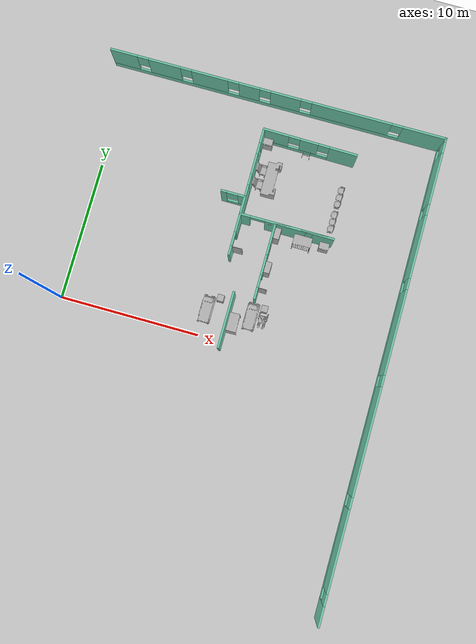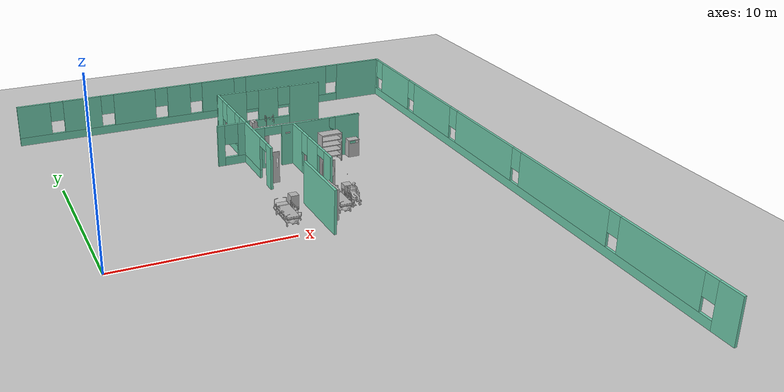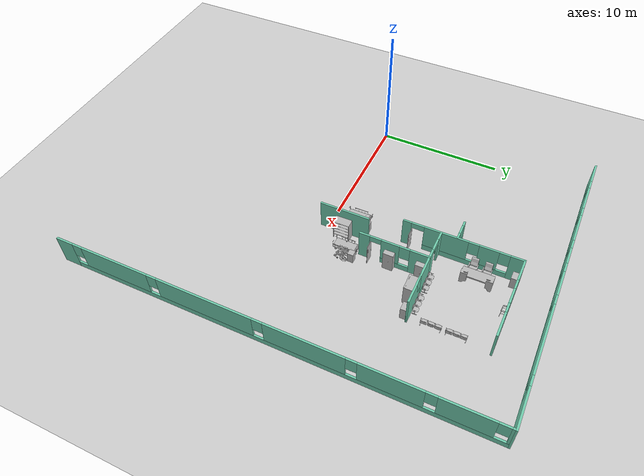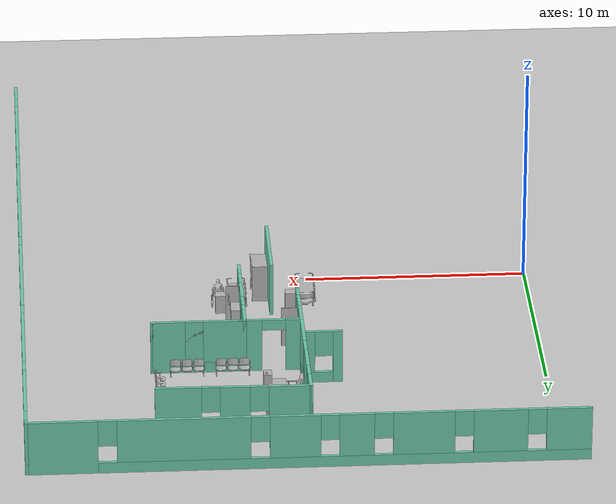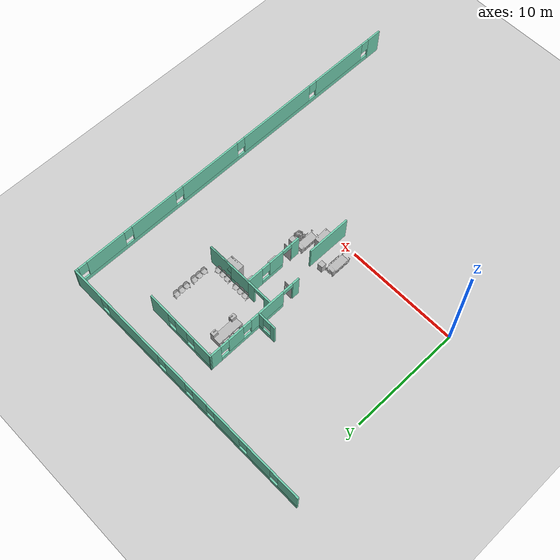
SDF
<sdf version="1.6">
 <world name="default">
  <model name="ground_plane">
   <static>1</static>
   <link name="link">
    <collision name="collision">
     <geometry><plane><normal>0 0 1</normal><size>100 100</size></plane></geometry>
     <surface><friction><ode><mu>100</mu><mu2>50</mu2></ode></friction></surface>
    </collision>
    <visual name="visual">
     <cast_shadows>0</cast_shadows>
     <geometry><plane><normal>0 0 1</normal><size>100 100</size></plane></geometry>
     <material>
      <script><uri>file://media/materials/scripts/gazebo.material</uri><name>Gazebo/Grey</name></script>
     </material>
    </visual>
   </link>
  </model>
  <model name="Hospital_empty">
   <pose>0.7078 0.61575 0 0 -0 0</pose>
   <link name="Wall_2">
    <pose>22.303 -0.012012 0 0 -0 1.5708</pose>
    <visual name="Wall_2_Visual_0">
     <pose>-16.2974 0 1.25 0 -0 0</pose>
     <geometry><box><size>1.40521 0.15 2.5</size></box></geometry>
     <material>
      <script><uri>file://media/materials/scripts/gazebo.material</uri><name>Gazebo/Grey</name></script>
      <ambient>0.435294 0.796078 0.67451 1</ambient>
     </material>
    </visual>
    <collision name="Wall_2_Collision_0">
     <geometry><box><size>1.40521 0.15 2.5</size></box></geometry>
     <pose>-16.2974 0 1.25 0 -0 0</pose>
    </collision>
    <visual name="Wall_2_Visual_1">
     <pose>0.702607 0 0.25 0 -0 0</pose>
     <geometry><box><size>32.5948 0.15 0.5</size></box></geometry>
     <material>
      <script><uri>file://media/materials/scripts/gazebo.material</uri><name>Gazebo/Grey</name></script>
      <ambient>0.435294 0.796078 0.67451 1</ambient>
     </material>
    </visual>
    <collision name="Wall_2_Collision_1">
     <geometry><box><size>32.5948 0.15 0.5</size></box></geometry>
     <pose>0.702607 0 0.25 0 -0 0</pose>
    </collision>
    <visual name="Wall_2_Visual_2">
     <pose>-11.9773 0 1.5 0 -0 0</pose>
     <geometry><box><size>5.635 0.15 2</size></box></geometry>
     <material>
      <script><uri>file://media/materials/scripts/gazebo.material</uri><name>Gazebo/Grey</name></script>
      <ambient>0.435294 0.796078 0.67451 1</ambient>
     </material>
    </visual>
    <collision name="Wall_2_Collision_2">
     <geometry><box><size>5.635 0.15 2</size></box></geometry>
     <pose>-11.9773 0 1.5 0 -0 0</pose>
    </collision>
    <visual name="Wall_2_Visual_3">
     <pose>-4.57479 0 1.5 0 -0 0</pose>
     <geometry><box><size>7.57 0.15 2</size></box></geometry>
     <material>
      <script><uri>file://media/materials/scripts/gazebo.material</uri><name>Gazebo/Grey</name></script>
      <ambient>0.435294 0.796078 0.67451 1</ambient>
     </material>
    </visual>
    <collision name="Wall_2_Collision_3">
     <geometry><box><size>7.57 0.15 2</size></box></geometry>
     <pose>-4.57479 0 1.5 0 -0 0</pose>
    </collision>
    <visual name="Wall_2_Visual_4">
     <pose>3.00771 0 1.5 0 -0 0</pose>
     <geometry><box><size>5.995 0.15 2</size></box></geometry>
     <material>
      <script><uri>file://media/materials/scripts/gazebo.material</uri><name>Gazebo/Grey</name></script>
      <ambient>0.435294 0.796078 0.67451 1</ambient>
     </material>
    </visual>
    <collision name="Wall_2_Collision_4">
     <geometry><box><size>5.995 0.15 2</size></box></geometry>
     <pose>3.00771 0 1.5 0 -0 0</pose>
    </collision>
    <visual name="Wall_2_Visual_5">
     <pose>9.0669 0 1.5 0 -0 0</pose>
     <geometry><box><size>4.52336 0.15 2</size></box></geometry>
     <material>
      <script><uri>file://media/materials/scripts/gazebo.material</uri><name>Gazebo/Grey</name></script>
      <ambient>0.435294 0.796078 0.67451 1</ambient>
     </material>
    </visual>
    <collision name="Wall_2_Collision_5">
     <geometry><box><size>4.52336 0.15 2</size></box></geometry>
     <pose>9.0669 0 1.5 0 -0 0</pose>
    </collision>
    <visual name="Wall_2_Visual_6">
     <pose>14.0011 0 1.5 0 -0 0</pose>
     <geometry><box><size>3.745 0.15 2</size></box></geometry>
     <material>
      <script><uri>file://media/materials/scripts/gazebo.material</uri><name>Gazebo/Grey</name></script>
      <ambient>0.435294 0.796078 0.67451 1</ambient>
     </material>
    </visual>
    <collision name="Wall_2_Collision_6">
     <geometry><box><size>3.745 0.15 2</size></box></geometry>
     <pose>14.0011 0 1.5 0 -0 0</pose>
    </collision>
    <visual name="Wall_2_Visual_7">
     <pose>16.8368 0 1.5 0 -0 0</pose>
     <geometry><box><size>0.326426 0.15 2</size></box></geometry>
     <material>
      <script><uri>file://media/materials/scripts/gazebo.material</uri><name>Gazebo/Grey</name></script>
      <ambient>0.435294 0.796078 0.67451 1</ambient>
     </material>
    </visual>
    <collision name="Wall_2_Collision_7">
     <geometry><box><size>0.326426 0.15 2</size></box></geometry>
     <pose>16.8368 0 1.5 0 -0 0</pose>
    </collision>
    <visual name="Wall_2_Visual_8">
     <pose>-15.1948 0 1.9 0 -0 0</pose>
     <geometry><box><size>0.8 0.15 1.2</size></box></geometry>
     <material>
      <script><uri>file://media/materials/scripts/gazebo.material</uri><name>Gazebo/Grey</name></script>
      <ambient>0.435294 0.796078 0.67451 1</ambient>
     </material>
    </visual>
    <collision name="Wall_2_Collision_8">
     <geometry><box><size>0.8 0.15 1.2</size></box></geometry>
     <pose>-15.1948 0 1.9 0 -0 0</pose>
    </collision>
    <visual name="Wall_2_Visual_9">
     <pose>-8.75979 0 1.9 0 -0 0</pose>
     <geometry><box><size>0.8 0.15 1.2</size></box></geometry>
     <material>
      <script><uri>file://media/materials/scripts/gazebo.material</uri><name>Gazebo/Grey</name></script>
      <ambient>0.435294 0.796078 0.67451 1</ambient>
     </material>
    </visual>
    <collision name="Wall_2_Collision_9">
     <geometry><box><size>0.8 0.15 1.2</size></box></geometry>
     <pose>-8.75979 0 1.9 0 -0 0</pose>
    </collision>
    <visual name="Wall_2_Visual_10">
     <pose>-0.389785 0 1.9 0 -0 0</pose>
     <geometry><box><size>0.8 0.15 1.2</size></box></geometry>
     <material>
      <script><uri>file://media/materials/scripts/gazebo.material</uri><name>Gazebo/Grey</name></script>
      <ambient>0.435294 0.796078 0.67451 1</ambient>
     </material>
    </visual>
    <collision name="Wall_2_Collision_10">
     <geometry><box><size>0.8 0.15 1.2</size></box></geometry>
     <pose>-0.389785 0 1.9 0 -0 0</pose>
    </collision>
    <visual name="Wall_2_Visual_11">
     <pose>6.40521 0 1.9 0 -0 0</pose>
     <geometry><box><size>0.8 0.15 1.2</size></box></geometry>
     <material>
      <script><uri>file://media/materials/scripts/gazebo.material</uri><name>Gazebo/Grey</name></script>
      <ambient>0.435294 0.796078 0.67451 1</ambient>
     </material>
    </visual>
    <collision name="Wall_2_Collision_11">
     <geometry><box><size>0.8 0.15 1.2</size></box></geometry>
     <pose>6.40521 0 1.9 0 -0 0</pose>
    </collision>
    <visual name="Wall_2_Visual_12">
     <pose>11.7286 0 1.9 0 -0 0</pose>
     <geometry><box><size>0.8 0.15 1.2</size></box></geometry>
     <material>
      <script><uri>file://media/materials/scripts/gazebo.material</uri><name>Gazebo/Grey</name></script>
      <ambient>0.435294 0.796078 0.67451 1</ambient>
     </material>
    </visual>
    <collision name="Wall_2_Collision_12">
     <geometry><box><size>0.8 0.15 1.2</size></box></geometry>
     <pose>11.7286 0 1.9 0 -0 0</pose>
    </collision>
    <visual name="Wall_2_Visual_13">
     <pose>16.2736 0 1.9 0 -0 0</pose>
     <geometry><box><size>0.8 0.15 1.2</size></box></geometry>
     <material>
      <script><uri>file://media/materials/scripts/gazebo.material</uri><name>Gazebo/Grey</name></script>
      <ambient>0.435294 0.796078 0.67451 1</ambient>
     </material>
    </visual>
    <collision name="Wall_2_Collision_13">
     <geometry><box><size>0.8 0.15 1.2</size></box></geometry>
     <pose>16.2736 0 1.9 0 -0 0</pose>
    </collision>
   </link>
   <link name="Wall_3">
    <pose>10.253 16.913 0 0 -0 3.14159</pose>
    <visual name="Wall_3_Visual_0">
     <pose>-10.5614 0 1.25 0 -0 0</pose>
     <geometry><box><size>3.12716 0.15 2.5</size></box></geometry>
     <material>
      <script><uri>file://media/materials/scripts/gazebo.material</uri><name>Gazebo/Grey</name></script>
      <ambient>0.435294 0.796078 0.67451 1</ambient>
     </material>
    </visual>
    <collision name="Wall_3_Collision_0">
     <geometry><box><size>3.12716 0.15 2.5</size></box></geometry>
     <pose>-10.5614 0 1.25 0 -0 0</pose>
    </collision>
    <visual name="Wall_3_Visual_1">
     <pose>1.56358 0 0.25 0 -0 0</pose>
     <geometry><box><size>21.1228 0.15 0.5</size></box></geometry>
     <material>
      <script><uri>file://media/materials/scripts/gazebo.material</uri><name>Gazebo/Grey</name></script>
      <ambient>0.435294 0.796078 0.67451 1</ambient>
     </material>
    </visual>
    <collision name="Wall_3_Collision_1">
     <geometry><box><size>21.1228 0.15 0.5</size></box></geometry>
     <pose>1.56358 0 0.25 0 -0 0</pose>
    </collision>
    <visual name="Wall_3_Visual_2">
     <pose>-5.33534 0 1.5 0 -0 0</pose>
     <geometry><box><size>5.725 0.15 2</size></box></geometry>
     <material>
      <script><uri>file://media/materials/scripts/gazebo.material</uri><name>Gazebo/Grey</name></script>
      <ambient>0.435294 0.796078 0.67451 1</ambient>
     </material>
    </visual>
    <collision name="Wall_3_Collision_2">
     <geometry><box><size>5.725 0.15 2</size></box></geometry>
     <pose>-5.33534 0 1.5 0 -0 0</pose>
    </collision>
    <visual name="Wall_3_Visual_3">
     <pose>-0.584865 0 1.5 0 -0 0</pose>
     <geometry><box><size>2.17595 0.15 2</size></box></geometry>
     <material>
      <script><uri>file://media/materials/scripts/gazebo.material</uri><name>Gazebo/Grey</name></script>
      <ambient>0.435294 0.796078 0.67451 1</ambient>
     </material>
    </visual>
    <collision name="Wall_3_Collision_3">
     <geometry><box><size>2.17595 0.15 2</size></box></geometry>
     <pose>-0.584865 0 1.5 0 -0 0</pose>
    </collision>
    <visual name="Wall_3_Visual_4">
     <pose>2.05094 0 1.5 0 -0 0</pose>
     <geometry><box><size>1.49565 0.15 2</size></box></geometry>
     <material>
      <script><uri>file://media/materials/scripts/gazebo.material</uri><name>Gazebo/Grey</name></script>
      <ambient>0.435294 0.796078 0.67451 1</ambient>
     </material>
    </visual>
    <collision name="Wall_3_Collision_4">
     <geometry><box><size>1.49565 0.15 2</size></box></geometry>
     <pose>2.05094 0 1.5 0 -0 0</pose>
    </collision>
    <visual name="Wall_3_Visual_5">
     <pose>4.9205 0 1.5 0 -0 0</pose>
     <geometry><box><size>2.64348 0.15 2</size></box></geometry>
     <material>
      <script><uri>file://media/materials/scripts/gazebo.material</uri><name>Gazebo/Grey</name></script>
      <ambient>0.435294 0.796078 0.67451 1</ambient>
     </material>
    </visual>
    <collision name="Wall_3_Collision_5">
     <geometry><box><size>2.64348 0.15 2</size></box></geometry>
     <pose>4.9205 0 1.5 0 -0 0</pose>
    </collision>
    <visual name="Wall_3_Visual_6">
     <pose>8.20746 0 1.5 0 -0 0</pose>
     <geometry><box><size>2.33044 0.15 2</size></box></geometry>
     <material>
      <script><uri>file://media/materials/scripts/gazebo.material</uri><name>Gazebo/Grey</name></script>
      <ambient>0.435294 0.796078 0.67451 1</ambient>
     </material>
    </visual>
    <collision name="Wall_3_Collision_6">
     <geometry><box><size>2.33044 0.15 2</size></box></geometry>
     <pose>8.20746 0 1.5 0 -0 0</pose>
    </collision>
    <visual name="Wall_3_Visual_7">
     <pose>11.1488 0 1.5 0 -0 0</pose>
     <geometry><box><size>1.95233 0.15 2</size></box></geometry>
     <material>
      <script><uri>file://media/materials/scripts/gazebo.material</uri><name>Gazebo/Grey</name></script>
      <ambient>0.435294 0.796078 0.67451 1</ambient>
     </material>
    </visual>
    <collision name="Wall_3_Collision_7">
     <geometry><box><size>1.95233 0.15 2</size></box></geometry>
     <pose>11.1488 0 1.5 0 -0 0</pose>
    </collision>
    <visual name="Wall_3_Visual_8">
     <pose>-8.59784 0 1.9 0 -0 0</pose>
     <geometry><box><size>0.8 0.15 1.2</size></box></geometry>
     <material>
      <script><uri>file://media/materials/scripts/gazebo.material</uri><name>Gazebo/Grey</name></script>
      <ambient>0.435294 0.796078 0.67451 1</ambient>
     </material>
    </visual>
    <collision name="Wall_3_Collision_8">
     <geometry><box><size>0.8 0.15 1.2</size></box></geometry>
     <pose>-8.59784 0 1.9 0 -0 0</pose>
    </collision>
    <visual name="Wall_3_Visual_9">
     <pose>-2.07284 0 1.9 0 -0 0</pose>
     <geometry><box><size>0.8 0.15 1.2</size></box></geometry>
     <material>
      <script><uri>file://media/materials/scripts/gazebo.material</uri><name>Gazebo/Grey</name></script>
      <ambient>0.435294 0.796078 0.67451 1</ambient>
     </material>
    </visual>
    <collision name="Wall_3_Collision_9">
     <geometry><box><size>0.8 0.15 1.2</size></box></geometry>
     <pose>-2.07284 0 1.9 0 -0 0</pose>
    </collision>
    <visual name="Wall_3_Visual_10">
     <pose>0.90311 0 1.9 0 -0 0</pose>
     <geometry><box><size>0.8 0.15 1.2</size></box></geometry>
     <material>
      <script><uri>file://media/materials/scripts/gazebo.material</uri><name>Gazebo/Grey</name></script>
      <ambient>0.435294 0.796078 0.67451 1</ambient>
     </material>
    </visual>
    <collision name="Wall_3_Collision_10">
     <geometry><box><size>0.8 0.15 1.2</size></box></geometry>
     <pose>0.90311 0 1.9 0 -0 0</pose>
    </collision>
    <visual name="Wall_3_Visual_11">
     <pose>3.19876 0 1.9 0 -0 0</pose>
     <geometry><box><size>0.8 0.15 1.2</size></box></geometry>
     <material>
      <script><uri>file://media/materials/scripts/gazebo.material</uri><name>Gazebo/Grey</name></script>
      <ambient>0.435294 0.796078 0.67451 1</ambient>
     </material>
    </visual>
    <collision name="Wall_3_Collision_11">
     <geometry><box><size>0.8 0.15 1.2</size></box></geometry>
     <pose>3.19876 0 1.9 0 -0 0</pose>
    </collision>
    <visual name="Wall_3_Visual_12">
     <pose>6.64224 0 1.9 0 -0 0</pose>
     <geometry><box><size>0.8 0.15 1.2</size></box></geometry>
     <material>
      <script><uri>file://media/materials/scripts/gazebo.material</uri><name>Gazebo/Grey</name></script>
      <ambient>0.435294 0.796078 0.67451 1</ambient>
     </material>
    </visual>
    <collision name="Wall_3_Collision_12">
     <geometry><box><size>0.8 0.15 1.2</size></box></geometry>
     <pose>6.64224 0 1.9 0 -0 0</pose>
    </collision>
    <visual name="Wall_3_Visual_13">
     <pose>9.77267 0 1.9 0 -0 0</pose>
     <geometry><box><size>0.8 0.15 1.2</size></box></geometry>
     <material>
      <script><uri>file://media/materials/scripts/gazebo.material</uri><name>Gazebo/Grey</name></script>
      <ambient>0.435294 0.796078 0.67451 1</ambient>
     </material>
    </visual>
    <collision name="Wall_3_Collision_13">
     <geometry><box><size>0.8 0.15 1.2</size></box></geometry>
     <pose>9.77267 0 1.9 0 -0 0</pose>
    </collision>
   </link>
   <link name="Wall_55">
    <pose>13.327 14.172 0 0 -0 3.12627</pose>
    <visual name="Wall_55_Visual_0">
     <pose>-2.39722 0 1.25 0 -0 0</pose>
     <geometry><box><size>2.01042 0.15 2.5</size></box></geometry>
     <material>
      <script><uri>file://media/materials/scripts/gazebo.material</uri><name>Gazebo/Grey</name></script>
      <ambient>0.435294 0.796078 0.67451 1</ambient>
     </material>
    </visual>
    <collision name="Wall_55_Collision_0">
     <geometry><box><size>2.01042 0.15 2.5</size></box></geometry>
     <pose>-2.39722 0 1.25 0 -0 0</pose>
    </collision>
    <visual name="Wall_55_Visual_1">
     <pose>1.00521 0 0.25 0 -0 0</pose>
     <geometry><box><size>4.79443 0.15 0.5</size></box></geometry>
     <material>
      <script><uri>file://media/materials/scripts/gazebo.material</uri><name>Gazebo/Grey</name></script>
      <ambient>0.435294 0.796078 0.67451 1</ambient>
     </material>
    </visual>
    <collision name="Wall_55_Collision_1">
     <geometry><box><size>4.79443 0.15 0.5</size></box></geometry>
     <pose>1.00521 0 0.25 0 -0 0</pose>
    </collision>
    <visual name="Wall_55_Visual_2">
     <pose>0.057785 0 1.5 0 -0 0</pose>
     <geometry><box><size>1.29957 0.15 2</size></box></geometry>
     <material>
      <script><uri>file://media/materials/scripts/gazebo.material</uri><name>Gazebo/Grey</name></script>
      <ambient>0.435294 0.796078 0.67451 1</ambient>
     </material>
    </visual>
    <collision name="Wall_55_Collision_2">
     <geometry><box><size>1.29957 0.15 2</size></box></geometry>
     <pose>0.057785 0 1.5 0 -0 0</pose>
    </collision>
    <visual name="Wall_55_Visual_3">
     <pose>2.455 0 1.5 0 -0 0</pose>
     <geometry><box><size>1.89485 0.15 2</size></box></geometry>
     <material>
      <script><uri>file://media/materials/scripts/gazebo.material</uri><name>Gazebo/Grey</name></script>
      <ambient>0.435294 0.796078 0.67451 1</ambient>
     </material>
    </visual>
    <collision name="Wall_55_Collision_3">
     <geometry><box><size>1.89485 0.15 2</size></box></geometry>
     <pose>2.455 0 1.5 0 -0 0</pose>
    </collision>
    <visual name="Wall_55_Visual_4">
     <pose>-0.992003 0 1.9 0 -0 0</pose>
     <geometry><box><size>0.8 0.15 1.2</size></box></geometry>
     <material>
      <script><uri>file://media/materials/scripts/gazebo.material</uri><name>Gazebo/Grey</name></script>
      <ambient>0.435294 0.796078 0.67451 1</ambient>
     </material>
    </visual>
    <collision name="Wall_55_Collision_4">
     <geometry><box><size>0.8 0.15 1.2</size></box></geometry>
     <pose>-0.992003 0 1.9 0 -0 0</pose>
    </collision>
    <visual name="Wall_55_Visual_5">
     <pose>1.10757 0 1.9 0 -0 0</pose>
     <geometry><box><size>0.8 0.15 1.2</size></box></geometry>
     <material>
      <script><uri>file://media/materials/scripts/gazebo.material</uri><name>Gazebo/Grey</name></script>
      <ambient>0.435294 0.796078 0.67451 1</ambient>
     </material>
    </visual>
    <collision name="Wall_55_Collision_5">
     <geometry><box><size>0.8 0.15 1.2</size></box></geometry>
     <pose>1.10757 0 1.9 0 -0 0</pose>
    </collision>
   </link>
   <link name="Wall_56">
    <pose>10.0184 9.67299 0 0 0 -1.56675</pose>
    <visual name="Wall_56_Visual_0">
     <pose>-4.0766 0 1.25 0 -0 0</pose>
     <geometry><box><size>1.09681 0.15 2.5</size></box></geometry>
     <material>
      <script><uri>file://media/materials/scripts/gazebo.material</uri><name>Gazebo/Grey</name></script>
      <ambient>0.435294 0.796078 0.67451 1</ambient>
     </material>
    </visual>
    <collision name="Wall_56_Collision_0">
     <geometry><box><size>1.09681 0.15 2.5</size></box></geometry>
     <pose>-4.0766 0 1.25 0 -0 0</pose>
    </collision>
    <visual name="Wall_56_Visual_1">
     <pose>4.28668 0 1.25 0 -0 0</pose>
     <geometry><box><size>0.676642 0.15 2.5</size></box></geometry>
     <material>
      <script><uri>file://media/materials/scripts/gazebo.material</uri><name>Gazebo/Grey</name></script>
      <ambient>0.435294 0.796078 0.67451 1</ambient>
     </material>
    </visual>
    <collision name="Wall_56_Collision_1">
     <geometry><box><size>0.676642 0.15 2.5</size></box></geometry>
     <pose>4.28668 0 1.25 0 -0 0</pose>
    </collision>
    <visual name="Wall_56_Visual_2">
     <pose>-0.289986 0 0.25 0 -0 0</pose>
     <geometry><box><size>6.47642 0.15 0.5</size></box></geometry>
     <material>
      <script><uri>file://media/materials/scripts/gazebo.material</uri><name>Gazebo/Grey</name></script>
      <ambient>0.435294 0.796078 0.67451 1</ambient>
     </material>
    </visual>
    <collision name="Wall_56_Collision_2">
     <geometry><box><size>6.47642 0.15 0.5</size></box></geometry>
     <pose>-0.289986 0 0.25 0 -0 0</pose>
    </collision>
    <visual name="Wall_56_Visual_3">
     <pose>-1.98322 0 1.5 0 -0 0</pose>
     <geometry><box><size>1.48995 0.15 2</size></box></geometry>
     <material>
      <script><uri>file://media/materials/scripts/gazebo.material</uri><name>Gazebo/Grey</name></script>
      <ambient>0.435294 0.796078 0.67451 1</ambient>
     </material>
    </visual>
    <collision name="Wall_56_Collision_3">
     <geometry><box><size>1.48995 0.15 2</size></box></geometry>
     <pose>-1.98322 0 1.5 0 -0 0</pose>
    </collision>
    <visual name="Wall_56_Visual_4">
     <pose>1.25499 0 1.5 0 -0 0</pose>
     <geometry><box><size>3.38647 0.15 2</size></box></geometry>
     <material>
      <script><uri>file://media/materials/scripts/gazebo.material</uri><name>Gazebo/Grey</name></script>
      <ambient>0.435294 0.796078 0.67451 1</ambient>
     </material>
    </visual>
    <collision name="Wall_56_Collision_4">
     <geometry><box><size>3.38647 0.15 2</size></box></geometry>
     <pose>1.25499 0 1.5 0 -0 0</pose>
    </collision>
    <visual name="Wall_56_Visual_5">
     <pose>-3.12819 0 1.9 0 -0 0</pose>
     <geometry><box><size>0.8 0.15 1.2</size></box></geometry>
     <material>
      <script><uri>file://media/materials/scripts/gazebo.material</uri><name>Gazebo/Grey</name></script>
      <ambient>0.435294 0.796078 0.67451 1</ambient>
     </material>
    </visual>
    <collision name="Wall_56_Collision_5">
     <geometry><box><size>0.8 0.15 1.2</size></box></geometry>
     <pose>-3.12819 0 1.9 0 -0 0</pose>
    </collision>
    <visual name="Wall_56_Visual_6">
     <pose>-0.838246 0 1.9 0 -0 0</pose>
     <geometry><box><size>0.8 0.15 1.2</size></box></geometry>
     <material>
      <script><uri>file://media/materials/scripts/gazebo.material</uri><name>Gazebo/Grey</name></script>
      <ambient>0.435294 0.796078 0.67451 1</ambient>
     </material>
    </visual>
    <collision name="Wall_56_Collision_6">
     <geometry><box><size>0.8 0.15 1.2</size></box></geometry>
     <pose>-0.838246 0 1.9 0 -0 0</pose>
    </collision>
    <visual name="Wall_56_Visual_7">
     <pose>3.44829 0 2.25 0 -0 0</pose>
     <geometry><box><size>1.00013 0.15 0.5</size></box></geometry>
     <material>
      <script><uri>file://media/materials/scripts/gazebo.material</uri><name>Gazebo/Grey</name></script>
      <ambient>0.435294 0.796078 0.67451 1</ambient>
     </material>
    </visual>
    <collision name="Wall_56_Collision_7">
     <geometry><box><size>1.00013 0.15 0.5</size></box></geometry>
     <pose>3.44829 0 2.25 0 -0 0</pose>
    </collision>
   </link>
   <link name="Wall_63">
    <pose>9.171 9.25499 0 0 -0 0</pose>
    <visual name="Wall_63_Visual_0">
     <pose>-0.664042 0 1.25 0 -0 0</pose>
     <geometry><box><size>0.421916 0.15 2.5</size></box></geometry>
     <material>
      <script><uri>file://media/materials/scripts/gazebo.material</uri><name>Gazebo/Grey</name></script>
      <ambient>0.435294 0.796078 0.67451 1</ambient>
     </material>
    </visual>
    <collision name="Wall_63_Collision_0">
     <geometry><box><size>0.421916 0.15 2.5</size></box></geometry>
     <pose>-0.664042 0 1.25 0 -0 0</pose>
    </collision>
    <visual name="Wall_63_Visual_1">
     <pose>0.210958 0 0.25 0 -0 0</pose>
     <geometry><box><size>1.32808 0.15 0.5</size></box></geometry>
     <material>
      <script><uri>file://media/materials/scripts/gazebo.material</uri><name>Gazebo/Grey</name></script>
      <ambient>0.435294 0.796078 0.67451 1</ambient>
     </material>
    </visual>
    <collision name="Wall_63_Collision_1">
     <geometry><box><size>1.32808 0.15 0.5</size></box></geometry>
     <pose>0.210958 0 0.25 0 -0 0</pose>
    </collision>
    <visual name="Wall_63_Visual_2">
     <pose>0.610958 0 1.5 0 -0 0</pose>
     <geometry><box><size>0.528084 0.15 2</size></box></geometry>
     <material>
      <script><uri>file://media/materials/scripts/gazebo.material</uri><name>Gazebo/Grey</name></script>
      <ambient>0.435294 0.796078 0.67451 1</ambient>
     </material>
    </visual>
    <collision name="Wall_63_Collision_2">
     <geometry><box><size>0.528084 0.15 2</size></box></geometry>
     <pose>0.610958 0 1.5 0 -0 0</pose>
    </collision>
    <visual name="Wall_63_Visual_3">
     <pose>-0.053084 0 1.9 0 -0 0</pose>
     <geometry><box><size>0.8 0.15 1.2</size></box></geometry>
     <material>
      <script><uri>file://media/materials/scripts/gazebo.material</uri><name>Gazebo/Grey</name></script>
      <ambient>0.435294 0.796078 0.67451 1</ambient>
     </material>
    </visual>
    <collision name="Wall_63_Collision_3">
     <geometry><box><size>0.8 0.15 1.2</size></box></geometry>
     <pose>-0.053084 0 1.9 0 -0 0</pose>
    </collision>
   </link>
   <link name="Wall_65">
    <pose>13.328 8.02099 0 0 -0 0</pose>
    <visual name="Wall_65_Visual_0">
     <pose>-2.98672 0 1.25 0 -0 0</pose>
     <geometry><box><size>0.776568 0.15 2.5</size></box></geometry>
     <material>
      <script><uri>file://media/materials/scripts/gazebo.material</uri><name>Gazebo/Grey</name></script>
      <ambient>0.435294 0.796078 0.67451 1</ambient>
     </material>
    </visual>
    <collision name="Wall_65_Collision_0">
     <geometry><box><size>0.776568 0.15 2.5</size></box></geometry>
     <pose>-2.98672 0 1.25 0 -0 0</pose>
    </collision>
    <visual name="Wall_65_Visual_1">
     <pose>0.91356 0 1.25 0 -0 0</pose>
     <geometry><box><size>4.92288 0.15 2.5</size></box></geometry>
     <material>
      <script><uri>file://media/materials/scripts/gazebo.material</uri><name>Gazebo/Grey</name></script>
      <ambient>0.435294 0.796078 0.67451 1</ambient>
     </material>
    </visual>
    <collision name="Wall_65_Collision_1">
     <geometry><box><size>4.92288 0.15 2.5</size></box></geometry>
     <pose>0.91356 0 1.25 0 -0 0</pose>
    </collision>
    <visual name="Wall_65_Visual_2">
     <pose>-2.07316 0 2.25 0 -0 0</pose>
     <geometry><box><size>1.05055 0.15 0.5</size></box></geometry>
     <material>
      <script><uri>file://media/materials/scripts/gazebo.material</uri><name>Gazebo/Grey</name></script>
      <ambient>0.435294 0.796078 0.67451 1</ambient>
     </material>
    </visual>
    <collision name="Wall_65_Collision_2">
     <geometry><box><size>1.05055 0.15 0.5</size></box></geometry>
     <pose>-2.07316 0 2.25 0 -0 0</pose>
    </collision>
   </link>
   <link name="Wall_66">
    <pose>14.578 8.02099 0 0 -0 3.14159</pose>
    <visual name="Wall_66_Visual_0">
     <pose>-1.35818 0 1.25 0 -0 0</pose>
     <geometry><box><size>1.53364 0.15 2.5</size></box></geometry>
     <material>
      <script><uri>file://media/materials/scripts/gazebo.material</uri><name>Gazebo/Grey</name></script>
      <ambient>0.435294 0.796078 0.67451 1</ambient>
     </material>
    </visual>
    <collision name="Wall_66_Collision_0">
     <geometry><box><size>1.53364 0.15 2.5</size></box></geometry>
     <pose>-1.35818 0 1.25 0 -0 0</pose>
    </collision>
    <visual name="Wall_66_Visual_1">
     <pose>0.766823 0 0.25 0 -0 0</pose>
     <geometry><box><size>2.71636 0.15 0.5</size></box></geometry>
     <material>
      <script><uri>file://media/materials/scripts/gazebo.material</uri><name>Gazebo/Grey</name></script>
      <ambient>0.435294 0.796078 0.67451 1</ambient>
     </material>
    </visual>
    <collision name="Wall_66_Collision_1">
     <geometry><box><size>2.71636 0.15 0.5</size></box></geometry>
     <pose>0.766823 0 0.25 0 -0 0</pose>
    </collision>
    <visual name="Wall_66_Visual_2">
     <pose>1.16682 0 1.5 0 -0 0</pose>
     <geometry><box><size>1.91636 0.15 2</size></box></geometry>
     <material>
      <script><uri>file://media/materials/scripts/gazebo.material</uri><name>Gazebo/Grey</name></script>
      <ambient>0.435294 0.796078 0.67451 1</ambient>
     </material>
    </visual>
    <collision name="Wall_66_Collision_2">
     <geometry><box><size>1.91636 0.15 2</size></box></geometry>
     <pose>1.16682 0 1.5 0 -0 0</pose>
    </collision>
    <visual name="Wall_66_Visual_3">
     <pose>-0.191355 0 1.9 0 -0 0</pose>
     <geometry><box><size>0.8 0.15 1.2</size></box></geometry>
     <material>
      <script><uri>file://media/materials/scripts/gazebo.material</uri><name>Gazebo/Grey</name></script>
      <ambient>0.435294 0.796078 0.67451 1</ambient>
     </material>
    </visual>
    <collision name="Wall_66_Collision_3">
     <geometry><box><size>0.8 0.15 1.2</size></box></geometry>
     <pose>-0.191355 0 1.9 0 -0 0</pose>
    </collision>
   </link>
   <link name="Wall_67">
    <pose>12.528 5.34599 0 0 0 -1.5708</pose>
    <visual name="Wall_67_Visual_0">
     <pose>-1.97675 0 1.25 0 -0 0</pose>
     <geometry><box><size>1.54651 0.15 2.5</size></box></geometry>
     <material>
      <script><uri>file://media/materials/scripts/gazebo.material</uri><name>Gazebo/Grey</name></script>
      <ambient>0.435294 0.796078 0.67451 1</ambient>
     </material>
    </visual>
    <collision name="Wall_67_Collision_0">
     <geometry><box><size>1.54651 0.15 2.5</size></box></geometry>
     <pose>-1.97675 0 1.25 0 -0 0</pose>
    </collision>
    <visual name="Wall_67_Visual_1">
     <pose>2.33158 0 1.25 0 -0 0</pose>
     <geometry><box><size>0.836844 0.15 2.5</size></box></geometry>
     <material>
      <script><uri>file://media/materials/scripts/gazebo.material</uri><name>Gazebo/Grey</name></script>
      <ambient>0.435294 0.796078 0.67451 1</ambient>
     </material>
    </visual>
    <collision name="Wall_67_Collision_1">
     <geometry><box><size>0.836844 0.15 2.5</size></box></geometry>
     <pose>2.33158 0 1.25 0 -0 0</pose>
    </collision>
    <visual name="Wall_67_Visual_2">
     <pose>-0.09517 0 0.25 0 -0 0</pose>
     <geometry><box><size>2.21665 0.15 0.5</size></box></geometry>
     <material>
      <script><uri>file://media/materials/scripts/gazebo.material</uri><name>Gazebo/Grey</name></script>
      <ambient>0.435294 0.796078 0.67451 1</ambient>
     </material>
    </visual>
    <collision name="Wall_67_Collision_2">
     <geometry><box><size>2.21665 0.15 0.5</size></box></geometry>
     <pose>-0.09517 0 0.25 0 -0 0</pose>
    </collision>
    <visual name="Wall_67_Visual_3">
     <pose>0.30483 0 1.5 0 -0 0</pose>
     <geometry><box><size>1.41665 0.15 2</size></box></geometry>
     <material>
      <script><uri>file://media/materials/scripts/gazebo.material</uri><name>Gazebo/Grey</name></script>
      <ambient>0.435294 0.796078 0.67451 1</ambient>
     </material>
    </visual>
    <collision name="Wall_67_Collision_3">
     <geometry><box><size>1.41665 0.15 2</size></box></geometry>
     <pose>0.30483 0 1.5 0 -0 0</pose>
    </collision>
    <visual name="Wall_67_Visual_4">
     <pose>-0.803495 0 1.9 0 -0 0</pose>
     <geometry><box><size>0.8 0.15 1.2</size></box></geometry>
     <material>
      <script><uri>file://media/materials/scripts/gazebo.material</uri><name>Gazebo/Grey</name></script>
      <ambient>0.435294 0.796078 0.67451 1</ambient>
     </material>
    </visual>
    <collision name="Wall_67_Collision_4">
     <geometry><box><size>0.8 0.15 1.2</size></box></geometry>
     <pose>-0.803495 0 1.9 0 -0 0</pose>
    </collision>
    <visual name="Wall_67_Visual_5">
     <pose>1.46316 0 2.25 0 -0 0</pose>
     <geometry><box><size>0.9 0.15 0.5</size></box></geometry>
     <material>
      <script><uri>file://media/materials/scripts/gazebo.material</uri><name>Gazebo/Grey</name></script>
      <ambient>0.435294 0.796078 0.67451 1</ambient>
     </material>
    </visual>
    <collision name="Wall_67_Collision_5">
     <geometry><box><size>0.9 0.15 0.5</size></box></geometry>
     <pose>1.46316 0 2.25 0 -0 0</pose>
    </collision>
   </link>
   <link name="Wall_92">
    <collision name="Wall_92_Collision">
     <geometry><box><size>4 0.15 2.5</size></box></geometry>
     <pose>0 0 1.25 0 -0 0</pose>
    </collision>
    <visual name="Wall_92_Visual">
     <pose>0 0 1.25 0 -0 0</pose>
     <geometry><box><size>4 0.15 2.5</size></box></geometry>
     <material>
      <script><uri>file://media/materials/scripts/gazebo.material</uri><name>Gazebo/Grey</name></script>
      <ambient>0.435294 0.796078 0.67451 1</ambient>
     </material>
    </visual>
    <pose>11.061 0.739988 0 0 0 -1.5708</pose>
   </link>
   <static>1</static>
  </model>
  <model name="ElectronicsRecycling_4">
   <static>1</static>
   <link name="body">
    <visual name="visual">
     <geometry><mesh><uri>model://ElectronicsRecycling/meshes/bin.obj</uri></mesh></geometry>
    </visual>
    <collision name="collision">
     <geometry><mesh><uri>model://ElectronicsRecycling/meshes/bin.obj</uri></mesh></geometry>
    </collision>
   </link>
   <pose>16.8973 8.63302 0 0 -0 0</pose>
  </model>
  <model name="ElectronicsRecycling_5">
   <static>1</static>
   <link name="body">
    <visual name="visual">
     <geometry><mesh><uri>model://ElectronicsRecycling/meshes/bin.obj</uri></mesh></geometry>
    </visual>
    <collision name="collision">
     <geometry><mesh><uri>model://ElectronicsRecycling/meshes/bin.obj</uri></mesh></geometry>
    </collision>
   </link>
   <pose>11.1122 14.8435 0 0 -0 0</pose>
  </model>
  <model name="BedsideTable2_3_clone_0">
   <static>1</static>
   <link name="body">
    <visual name="visual">
     <geometry><mesh><uri>model://BedsideTable2/meshes/BedsideTable2.obj</uri></mesh></geometry>
    </visual>
    <collision name="collision">
     <geometry><mesh><uri>model://BedsideTable2/meshes/BedsideTable2_Col.obj</uri></mesh></geometry>
    </collision>
   </link>
   <pose>10.9002 2.88042 0 0 -0 0</pose>
  </model>
  <model name="BedsideTable2_5">
   <static>1</static>
   <link name="body">
    <visual name="visual">
     <geometry><mesh><uri>model://BedsideTable2/meshes/BedsideTable2.obj</uri></mesh></geometry>
    </visual>
    <collision name="collision">
     <geometry><mesh><uri>model://BedsideTable2/meshes/BedsideTable2_Col.obj</uri></mesh></geometry>
    </collision>
   </link>
   <pose>14.0594 2.96061 0 0 -0 0</pose>
  </model>
  <model name="MetalCabinet_clone_clone_0_clone">
   <static>1</static>
   <link name="body">
    <visual name="visual">
     <geometry><mesh><uri>model://MetalCabinet/meshes/MetalCabinet.obj</uri></mesh></geometry>
    </visual>
    <collision name="collision">
     <geometry><mesh><uri>model://MetalCabinet/meshes/MetalCabinet.obj</uri></mesh></geometry>
    </collision>
   </link>
   <pose>13.5123 8.17874 0 0 -0 1.55562</pose>
  </model>
  <model name="MetalCabinet_clone_clone_0_clone_0">
   <static>1</static>
   <link name="body">
    <visual name="visual">
     <geometry><mesh><uri>model://MetalCabinet/meshes/MetalCabinet.obj</uri></mesh></geometry>
    </visual>
    <collision name="collision">
     <geometry><mesh><uri>model://MetalCabinet/meshes/MetalCabinet.obj</uri></mesh></geometry>
    </collision>
   </link>
   <pose>13.5108 5.69943 0 0 -0 1.55562</pose>
  </model>
  <model name="PatientWheelChair_1">
   <static>1</static>
   <link name="body">
    <visual name="visual">
     <geometry><mesh><uri>model://PatientWheelChair/meshes/PatientWheelChair.obj</uri></mesh></geometry>
    </visual>
    <collision name="collision">
     <geometry><mesh><uri>model://PatientWheelChair/meshes/PatientWheelChair_Col.obj</uri></mesh></geometry>
    </collision>
   </link>
   <pose>14.1177 2.17388 0 0 -0 0</pose>
  </model>
  <model name="MainTable">
   <static>1</static>
   <link name="body">
    <visual name="visual">
     <geometry><mesh><uri>model://MainTable/meshes/MainTable.obj</uri></mesh></geometry>
    </visual>
    <collision name="collision">
     <geometry><mesh><uri>model://MainTable/meshes/MainTable.obj</uri></mesh></geometry>
    </collision>
   </link>
   <pose>12.0421 12.044 0 0 -0 1.57891</pose>
  </model>
  <model name="VisitorChair_0_clone_0">
   <static>1</static>
   <link name="body">
    <visual name="visual">
     <geometry><mesh><uri>model://VisitorChair/meshes/VisitorChair.obj</uri></mesh></geometry>
    </visual>
    <collision name="collision">
     <geometry><mesh><uri>model://VisitorChair/meshes/VisitorChair_Col.obj</uri></mesh></geometry>
    </collision>
   </link>
   <pose>11.2906 12.5554 0 0 -0 1.55163</pose>
  </model>
  <model name="VisitorChair_0_clone_1">
   <static>1</static>
   <link name="body">
    <visual name="visual">
     <geometry><mesh><uri>model://VisitorChair/meshes/VisitorChair.obj</uri></mesh></geometry>
    </visual>
    <collision name="collision">
     <geometry><mesh><uri>model://VisitorChair/meshes/VisitorChair_Col.obj</uri></mesh></geometry>
    </collision>
   </link>
   <pose>11.2798 11.4967 0 0 -0 1.55163</pose>
  </model>
  <model name="Walker_3">
   <static>1</static>
   <link name="body">
    <visual name="visual"><geometry><mesh><uri>model://Walker/meshes/Walker.obj</uri></mesh></geometry></visual>
    <collision name="collision">
     <geometry><mesh><uri>model://Walker/meshes/Walker_Col.obj</uri></mesh></geometry>
    </collision>
   </link>
   <pose>13.959 14.5531 0 0 -0 0</pose>
  </model>
  <model name="ExitSign">
   <static>1</static>
   <link name="body">
    <visual name="visual">
     <geometry><mesh><uri>model://ExitSign/meshes/ExitSign.obj</uri></mesh></geometry>
    </visual>
    <collision name="collision">
     <geometry><mesh><uri>model://ExitSign/meshes/ExitSign.obj</uri></mesh></geometry>
    </collision>
   </link>
   <pose>12.8606 8.58199 1.80514 0 -0 0</pose>
  </model>
  <model name="OrangeDoors_0_clone_0">
   <static>1</static>
   <link name="body">
    <visual name="visual">
     <geometry><mesh><uri>model://OrangeDoors/meshes/door.obj</uri></mesh></geometry>
    </visual>
    <collision name="collision">
     <geometry><mesh><uri>model://OrangeDoors/meshes/door.obj</uri></mesh></geometry>
    </collision>
   </link>
   <pose>13.4954 4.12425 0 0 -0 0</pose>
  </model>
  <model name="OrangeDoors_0_clone_5">
   <static>1</static>
   <link name="body">
    <visual name="visual">
     <geometry><mesh><uri>model://OrangeDoors/meshes/door.obj</uri></mesh></geometry>
    </visual>
    <collision name="collision">
     <geometry><mesh><uri>model://OrangeDoors/meshes/door.obj</uri></mesh></geometry>
    </collision>
   </link>
   <pose>11.1212 6.41085 0 0 -0 0</pose>
  </model>
  <model name="TrolleyBed_6">
   <static>1</static>
   <link name="link">
    <visual name="visual">
     <geometry><mesh><uri>model://TrolleyBed/meshes/TrolleyBed.obj</uri></mesh></geometry>
    </visual>
    <collision name="collision">
     <geometry><mesh><uri>model://TrolleyBed/meshes/TrolleyBed.obj</uri></mesh></geometry>
    </collision>
   </link>
   <pose>10.1429 1.89196 0 0 -0 0</pose>
  </model>
  <model name="TrolleyBed_8">
   <static>1</static>
   <link name="link">
    <visual name="visual">
     <geometry><mesh><uri>model://TrolleyBed/meshes/TrolleyBed.obj</uri></mesh></geometry>
    </visual>
    <collision name="collision">
     <geometry><mesh><uri>model://TrolleyBed/meshes/TrolleyBed.obj</uri></mesh></geometry>
    </collision>
   </link>
   <pose>13.2773 2.20517 0 0 -0 0</pose>
  </model>
  <model name="StorageRackCoverOpen_4_clone_0">
   <static>1</static>
   <link name="link">
    <visual name="visual">
     <geometry><mesh><uri>model://StorageRackCoverOpen/meshes/StorageRackCoverOpen.obj</uri></mesh></geometry>
    </visual>
    <collision name="collision">
     <geometry><mesh><uri>model://StorageRackCoverOpen/meshes/StorageRackCoverOpen.obj</uri></mesh></geometry>
    </collision>
   </link>
   <pose>12.2396 1.38444 0 0 -0 1.58417</pose>
  </model>
  <model name="StorageRackCoverOpen_6">
   <static>1</static>
   <link name="link">
    <visual name="visual">
     <geometry><mesh><uri>model://StorageRackCoverOpen/meshes/StorageRackCoverOpen.obj</uri></mesh></geometry>
    </visual>
    <collision name="collision">
     <geometry><mesh><uri>model://StorageRackCoverOpen/meshes/StorageRackCoverOpen.obj</uri></mesh></geometry>
    </collision>
   </link>
   <pose>15.338 8.10896 0 0 -0 0</pose>
  </model>
  <model name="WhiteChipChair">
   <static>1</static>
   <link name="link">
    <visual name="visual">
     <geometry><mesh><uri>model://WhiteChipChair/meshes/WhiteChipChair.obj</uri></mesh></geometry>
    </visual>
    <collision name="collision">
     <geometry><mesh><uri>model://WhiteChipChair/meshes/WhiteChipChair.obj</uri></mesh></geometry>
    </collision>
   </link>
   <pose>15.8101 8.69981 0 0 -0 1.57333</pose>
  </model>
  <model name="WhiteChipChair_0">
   <static>1</static>
   <link name="link">
    <visual name="visual">
     <geometry><mesh><uri>model://WhiteChipChair/meshes/WhiteChipChair.obj</uri></mesh></geometry>
    </visual>
    <collision name="collision">
     <geometry><mesh><uri>model://WhiteChipChair/meshes/WhiteChipChair.obj</uri></mesh></geometry>
    </collision>
   </link>
   <pose>17.2932 12.168 0 0 0 -3.13772</pose>
  </model>
  <model name="WhiteChipChair_clone">
   <static>1</static>
   <link name="link">
    <visual name="visual">
     <geometry><mesh><uri>model://WhiteChipChair/meshes/WhiteChipChair.obj</uri></mesh></geometry>
    </visual>
    <collision name="collision">
     <geometry><mesh><uri>model://WhiteChipChair/meshes/WhiteChipChair.obj</uri></mesh></geometry>
    </collision>
   </link>
   <pose>13.7906 8.71071 0 0 -0 1.57333</pose>
  </model>
  <model name="WhiteChipChair_0_clone">
   <static>1</static>
   <link name="link">
    <visual name="visual">
     <geometry><mesh><uri>model://WhiteChipChair/meshes/WhiteChipChair.obj</uri></mesh></geometry>
    </visual>
    <collision name="collision">
     <geometry><mesh><uri>model://WhiteChipChair/meshes/WhiteChipChair.obj</uri></mesh></geometry>
    </collision>
   </link>
   <pose>17.2861 10.3292 0 0 0 -3.13772</pose>
  </model>
 </world>
</sdf>
